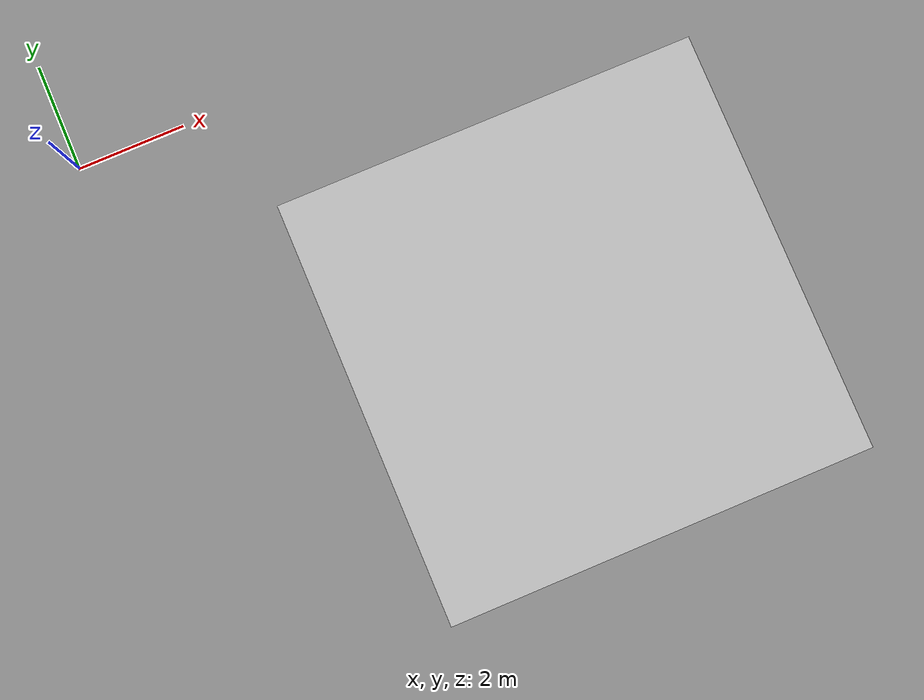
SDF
<?xml version='1.0'?>
<sdf version='1.6'>
  <model name='bump_surface'>
  <pose>3 -2 0  0 0 0</pose>
  <static>true</static>
  <link name="body">
  <collision name="collision">
    <geometry>
      <mesh><uri>model://bump_surface/bump_surface.dae</uri></mesh>
    </geometry>
    <surface>
      <friction>
        <ode>
          <mu>100</mu>
          <mu2>50</mu2>
        </ode>
      </friction>
    </surface>
  </collision>
    <visual name="visual">
      <geometry>
        <mesh><uri>model://bump_surface/bump_surface.dae</uri></mesh>
      </geometry>
    </visual>
  </link>
  </model>
</sdf>
